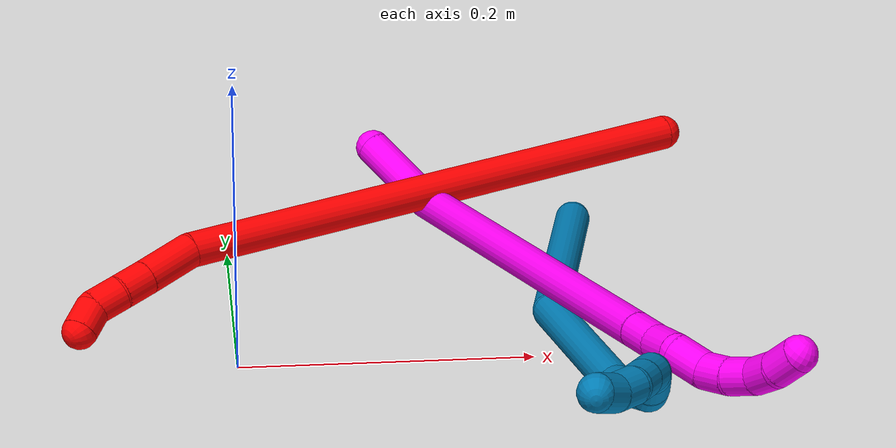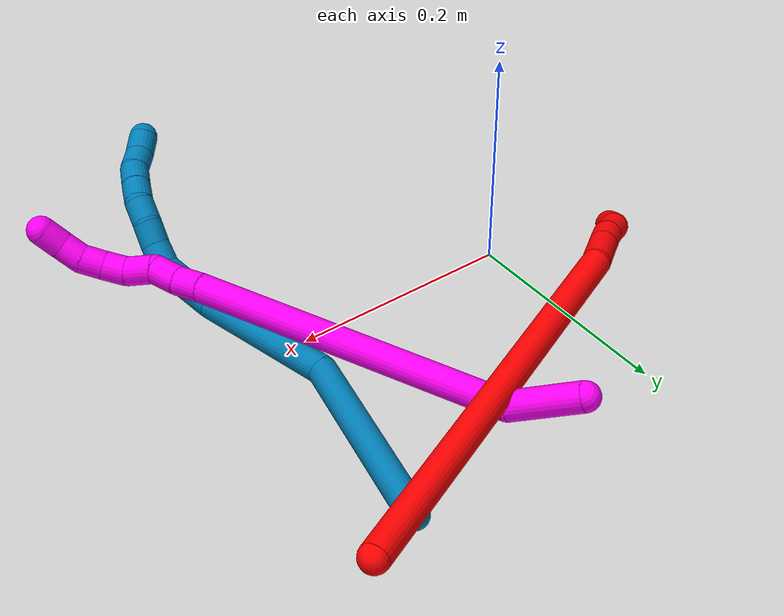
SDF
<sdf version="1.7">
 <world name="default">
  <model name="bin">
   <static>1</static>
   <link name="bottom">
    <collision name="collision-bottom">
     <pose>0 0 -0.01 0 -0 0</pose>
     <geometry><box><size>0.8 0.6 0.02</size></box></geometry>
     <surface>
      <friction><ode><mu>100</mu><mu2>100</mu2></ode></friction>
      <contact><collide_bitmask>65535</collide_bitmask></contact>
     </surface>
    </collision>
   </link>
   <link name="west_wall">
    <collision name="collision-west_wall">
     <pose>-0.41 0 0.1 0 -0 0</pose>
     <geometry><box><size>0.02 0.6 0.2</size></box></geometry>
     <surface>
      <friction><ode><mu>100</mu><mu2>100</mu2></ode></friction>
      <contact><collide_bitmask>65535</collide_bitmask></contact>
     </surface>
    </collision>
   </link>
   <link name="east_wall">
    <collision name="collision-east_wall">
     <pose>0.41 0 0.1 0 -0 0</pose>
     <geometry><box><size>0.02 0.6 0.2</size></box></geometry>
     <surface>
      <friction><ode><mu>100</mu><mu2>100</mu2></ode></friction>
      <contact><collide_bitmask>65535</collide_bitmask></contact>
     </surface>
    </collision>
   </link>
   <link name="south_wall">
    <collision name="collision-south_wall">
     <pose>0 -0.31 0.1 0 -0 0</pose>
     <geometry><box><size>0.8 0.02 0.2</size></box></geometry>
     <surface>
      <friction><ode><mu>100</mu><mu2>100</mu2></ode></friction>
      <contact><collide_bitmask>65535</collide_bitmask></contact>
     </surface>
    </collision>
   </link>
   <link name="north_wall">
    <collision name="collision-north_wall">
     <pose>0 0.31 0.1 0 -0 0</pose>
     <geometry><box><size>0.8 0.02 0.2</size></box></geometry>
     <surface>
      <friction><ode><mu>100</mu><mu2>100</mu2></ode></friction>
      <contact><collide_bitmask>65535</collide_bitmask></contact>
     </surface>
    </collision>
   </link>
  </model>
  <model name="2">
   <static>0</static>
   <link name="2">
    <collision name="collision-cylinder-e_1_1_4">
     <pose>-0.026021 -0.061058 -0.185401 2.82345 -0.132525 -0.784425</pose>
     <geometry><cylinder><radius>0.0125</radius><length>0.393847</length></cylinder></geometry>
     <surface>
      <friction><ode><mu>1.16</mu><mu2>1.16</mu2><slip1>0</slip1><slip2>0</slip2></ode></friction>
      <contact><ode><kp>1e+06</kp><kd>1</kd><max_vel>0</max_vel><min_depth>0.001</min_depth></ode></contact>
     </surface>
    </collision>
    <visual name="visual-cylinder-e_1_1_4">
     <pose>-0.026021 -0.061058 -0.185401 2.82345 -0.132525 -0.784425</pose>
     <geometry><cylinder><radius>0.0125</radius><length>0.393847</length></cylinder></geometry>
     <material><ambient>1 0 0 1</ambient></material>
    </visual>
    <collision name="collision-cylinder-e_2_4_5">
     <pose>-0.053055 -0.12286 -0.391155 3.10509 -0.049683 -1.87452</pose>
     <geometry><cylinder><radius>0.0125</radius><length>0.040781</length></cylinder></geometry>
     <surface>
      <friction><ode><mu>1.16</mu><mu2>1.16</mu2><slip1>0</slip1><slip2>0</slip2></ode></friction>
      <contact><ode><kp>1e+06</kp><kd>1</kd><max_vel>0</max_vel><min_depth>0.001</min_depth></ode></contact>
     </surface>
    </collision>
    <visual name="visual-cylinder-e_2_4_5">
     <pose>-0.053055 -0.12286 -0.391155 3.10509 -0.049683 -1.87452</pose>
     <geometry><cylinder><radius>0.0125</radius><length>0.040781</length></cylinder></geometry>
     <material><ambient>1 0 0 1</ambient></material>
    </visual>
    <collision name="collision-cylinder-e_3_5_6">
     <pose>-0.054685 -0.124229 -0.422753 3.08598 -0.0548 -1.55607</pose>
     <geometry><cylinder><radius>0.0125</radius><length>0.022562</length></cylinder></geometry>
     <surface>
      <friction><ode><mu>1.16</mu><mu2>1.16</mu2><slip1>0</slip1><slip2>0</slip2></ode></friction>
      <contact><ode><kp>1e+06</kp><kd>1</kd><max_vel>0</max_vel><min_depth>0.001</min_depth></ode></contact>
     </surface>
    </collision>
    <visual name="visual-cylinder-e_3_5_6">
     <pose>-0.054685 -0.124229 -0.422753 3.08598 -0.0548 -1.55607</pose>
     <geometry><cylinder><radius>0.0125</radius><length>0.022562</length></cylinder></geometry>
     <material><ambient>1 0 0 1</ambient></material>
    </visual>
    <collision name="collision-cylinder-e_4_6_7">
     <pose>-0.057496 -0.125456 -0.444895 3.0865 -0.198338 -2.60129</pose>
     <geometry><cylinder><radius>0.0125</radius><length>0.02226</length></cylinder></geometry>
     <surface>
      <friction><ode><mu>1.16</mu><mu2>1.16</mu2><slip1>0</slip1><slip2>0</slip2></ode></friction>
      <contact><ode><kp>1e+06</kp><kd>1</kd><max_vel>0</max_vel><min_depth>0.001</min_depth></ode></contact>
     </surface>
    </collision>
    <visual name="visual-cylinder-e_4_6_7">
     <pose>-0.057496 -0.125456 -0.444895 3.0865 -0.198338 -2.60129</pose>
     <geometry><cylinder><radius>0.0125</radius><length>0.02226</length></cylinder></geometry>
     <material><ambient>1 0 0 1</ambient></material>
    </visual>
    <collision name="collision-cylinder-e_5_7_2">
     <pose>-0.059292 -0.122029 -0.465234 -2.73844 0.038625 -0.188473</pose>
     <geometry><cylinder><radius>0.0125</radius><length>0.02055</length></cylinder></geometry>
     <surface>
      <friction><ode><mu>1.16</mu><mu2>1.16</mu2><slip1>0</slip1><slip2>0</slip2></ode></friction>
      <contact><ode><kp>1e+06</kp><kd>1</kd><max_vel>0</max_vel><min_depth>0.001</min_depth></ode></contact>
     </surface>
    </collision>
    <visual name="visual-cylinder-e_5_7_2">
     <pose>-0.059292 -0.122029 -0.465234 -2.73844 0.038625 -0.188473</pose>
     <geometry><cylinder><radius>0.0125</radius><length>0.02055</length></cylinder></geometry>
     <material><ambient>1 0 0 1</ambient></material>
    </visual>
    <collision name="collision-sphere-2">
     <pose>-0.058896 -0.118001 -0.474678 0 -0 0</pose>
     <geometry><sphere><radius>0.0125</radius></sphere></geometry>
     <surface>
      <friction><ode><mu>1.16</mu><mu2>1.16</mu2><slip1>0</slip1><slip2>0</slip2></ode></friction>
      <contact><ode><kp>1e+06</kp><kd>1</kd><max_vel>0</max_vel><min_depth>0.001</min_depth></ode></contact>
     </surface>
    </collision>
    <visual name="visual-sphere-2">
     <pose>-0.058896 -0.118001 -0.474678 0 -0 0</pose>
     <geometry><sphere><radius>0.0125</radius></sphere></geometry>
     <material><ambient>1 0 0 1</ambient></material>
    </visual>
    <collision name="collision-sphere-7">
     <pose>-0.059689 -0.126057 -0.45579 0 -0 0</pose>
     <geometry><sphere><radius>0.0125</radius></sphere></geometry>
     <surface>
      <friction><ode><mu>1.16</mu><mu2>1.16</mu2><slip1>0</slip1><slip2>0</slip2></ode></friction>
      <contact><ode><kp>1e+06</kp><kd>1</kd><max_vel>0</max_vel><min_depth>0.001</min_depth></ode></contact>
     </surface>
    </collision>
    <visual name="visual-sphere-7">
     <pose>-0.059689 -0.126057 -0.45579 0 -0 0</pose>
     <geometry><sphere><radius>0.0125</radius></sphere></geometry>
     <material><ambient>1 0 0 1</ambient></material>
    </visual>
    <collision name="collision-sphere-6">
     <pose>-0.055303 -0.124855 -0.434 0 -0 0</pose>
     <geometry><sphere><radius>0.0125</radius></sphere></geometry>
     <surface>
      <friction><ode><mu>1.16</mu><mu2>1.16</mu2><slip1>0</slip1><slip2>0</slip2></ode></friction>
      <contact><ode><kp>1e+06</kp><kd>1</kd><max_vel>0</max_vel><min_depth>0.001</min_depth></ode></contact>
     </surface>
    </collision>
    <visual name="visual-sphere-6">
     <pose>-0.055303 -0.124855 -0.434 0 -0 0</pose>
     <geometry><sphere><radius>0.0125</radius></sphere></geometry>
     <material><ambient>1 0 0 1</ambient></material>
    </visual>
    <collision name="collision-sphere-5">
     <pose>-0.054067 -0.123603 -0.411507 0 -0 0</pose>
     <geometry><sphere><radius>0.0125</radius></sphere></geometry>
     <surface>
      <friction><ode><mu>1.16</mu><mu2>1.16</mu2><slip1>0</slip1><slip2>0</slip2></ode></friction>
      <contact><ode><kp>1e+06</kp><kd>1</kd><max_vel>0</max_vel><min_depth>0.001</min_depth></ode></contact>
     </surface>
    </collision>
    <visual name="visual-sphere-5">
     <pose>-0.054067 -0.123603 -0.411507 0 -0 0</pose>
     <geometry><sphere><radius>0.0125</radius></sphere></geometry>
     <material><ambient>1 0 0 1</ambient></material>
    </visual>
    <collision name="collision-sphere-1">
     <geometry><sphere><radius>0.0125</radius></sphere></geometry>
     <surface>
      <friction><ode><mu>1.16</mu><mu2>1.16</mu2><slip1>0</slip1><slip2>0</slip2></ode></friction>
      <contact><ode><kp>1e+06</kp><kd>1</kd><max_vel>0</max_vel><min_depth>0.001</min_depth></ode></contact>
     </surface>
    </collision>
    <visual name="visual-sphere-1">
     <geometry><sphere><radius>0.0125</radius></sphere></geometry>
     <material><ambient>1 0 0 1</ambient></material>
    </visual>
    <collision name="collision-sphere-4">
     <pose>-0.052042 -0.122117 -0.370803 0 -0 0</pose>
     <geometry><sphere><radius>0.0125</radius></sphere></geometry>
     <surface>
      <friction><ode><mu>1.16</mu><mu2>1.16</mu2><slip1>0</slip1><slip2>0</slip2></ode></friction>
      <contact><ode><kp>1e+06</kp><kd>1</kd><max_vel>0</max_vel><min_depth>0.001</min_depth></ode></contact>
     </surface>
    </collision>
    <visual name="visual-sphere-4">
     <pose>-0.052042 -0.122117 -0.370803 0 -0 0</pose>
     <geometry><sphere><radius>0.0125</radius></sphere></geometry>
     <material><ambient>1 0 0 1</ambient></material>
    </visual>
    <inertial>
     <pose>-0.032288 -0.074322 -0.235947 0 -0 0</pose>
     <mass>0.5</mass>
     <inertia>
      <ixx>-1e-05</ixx>
      <ixy>0</ixy>
      <ixz>0</ixz>
      <iyy>-0.006876</iyy>
      <iyz>0</iyz>
      <izz>0.002222</izz>
     </inertia>
    </inertial>
   </link>
   <pose>0.32861 0.27027 0.058654 -1.29112 -0.557855 -1.00336</pose>
  </model>
  <model name="9">
   <static>0</static>
   <link name="9">
    <collision name="collision-cylinder-e_1_1_4">
     <pose>-0.004081 0.004849 -0.08735 -3.08614 -0.046617 1.39792</pose>
     <geometry><cylinder><radius>0.0125</radius><length>0.17516</length></cylinder></geometry>
     <surface>
      <friction><ode><mu>1.16</mu><mu2>1.16</mu2><slip1>0</slip1><slip2>0</slip2></ode></friction>
      <contact><ode><kp>1e+06</kp><kd>1</kd><max_vel>0</max_vel><min_depth>0.001</min_depth></ode></contact>
     </surface>
    </collision>
    <visual name="visual-cylinder-e_1_1_4">
     <pose>-0.004081 0.004849 -0.08735 -3.08614 -0.046617 1.39792</pose>
     <geometry><cylinder><radius>0.0125</radius><length>0.17516</length></cylinder></geometry>
     <material><ambient>0 0.490196 0.709804 1</ambient></material>
    </visual>
    <collision name="collision-cylinder-e_2_4_5">
     <pose>0.002013 -0.010487 -0.234535 2.81623 0.159762 0.907562</pose>
     <geometry><cylinder><radius>0.0125</radius><length>0.127924</length></cylinder></geometry>
     <surface>
      <friction><ode><mu>1.16</mu><mu2>1.16</mu2><slip1>0</slip1><slip2>0</slip2></ode></friction>
      <contact><ode><kp>1e+06</kp><kd>1</kd><max_vel>0</max_vel><min_depth>0.001</min_depth></ode></contact>
     </surface>
    </collision>
    <visual name="visual-cylinder-e_2_4_5">
     <pose>0.002013 -0.010487 -0.234535 2.81623 0.159762 0.907562</pose>
     <geometry><cylinder><radius>0.0125</radius><length>0.127924</length></cylinder></geometry>
     <material><ambient>0 0.490196 0.709804 1</ambient></material>
    </visual>
    <collision name="collision-cylinder-e_3_5_6">
     <pose>0.01042 -0.043487 -0.317514 2.63592 -0.066719 -0.256911</pose>
     <geometry><cylinder><radius>0.0125</radius><length>0.05303</length></cylinder></geometry>
     <surface>
      <friction><ode><mu>1.16</mu><mu2>1.16</mu2><slip1>0</slip1><slip2>0</slip2></ode></friction>
      <contact><ode><kp>1e+06</kp><kd>1</kd><max_vel>0</max_vel><min_depth>0.001</min_depth></ode></contact>
     </surface>
    </collision>
    <visual name="visual-cylinder-e_3_5_6">
     <pose>0.01042 -0.043487 -0.317514 2.63592 -0.066719 -0.256911</pose>
     <geometry><cylinder><radius>0.0125</radius><length>0.05303</length></cylinder></geometry>
     <material><ambient>0 0.490196 0.709804 1</ambient></material>
    </visual>
    <collision name="collision-cylinder-e_4_6_7">
     <pose>0.003336 -0.05981 -0.34949 2.76346 -0.510104 -1.87534</pose>
     <geometry><cylinder><radius>0.0125</radius><length>0.021777</length></cylinder></geometry>
     <surface>
      <friction><ode><mu>1.16</mu><mu2>1.16</mu2><slip1>0</slip1><slip2>0</slip2></ode></friction>
      <contact><ode><kp>1e+06</kp><kd>1</kd><max_vel>0</max_vel><min_depth>0.001</min_depth></ode></contact>
     </surface>
    </collision>
    <visual name="visual-cylinder-e_4_6_7">
     <pose>0.003336 -0.05981 -0.34949 2.76346 -0.510104 -1.87534</pose>
     <geometry><cylinder><radius>0.0125</radius><length>0.021777</length></cylinder></geometry>
     <material><ambient>0 0.490196 0.709804 1</ambient></material>
    </visual>
    <collision name="collision-cylinder-e_5_7_8">
     <pose>-0.00849 -0.067023 -0.365986 2.69138 -0.652804 -1.95209</pose>
     <geometry><cylinder><radius>0.0125</radius><length>0.021433</length></cylinder></geometry>
     <surface>
      <friction><ode><mu>1.16</mu><mu2>1.16</mu2><slip1>0</slip1><slip2>0</slip2></ode></friction>
      <contact><ode><kp>1e+06</kp><kd>1</kd><max_vel>0</max_vel><min_depth>0.001</min_depth></ode></contact>
     </surface>
    </collision>
    <visual name="visual-cylinder-e_5_7_8">
     <pose>-0.00849 -0.067023 -0.365986 2.69138 -0.652804 -1.95209</pose>
     <geometry><cylinder><radius>0.0125</radius><length>0.021433</length></cylinder></geometry>
     <material><ambient>0 0.490196 0.709804 1</ambient></material>
    </visual>
    <collision name="collision-cylinder-e_6_8_9">
     <pose>-0.019682 -0.072875 -0.382532 2.90433 -0.473576 -2.22404</pose>
     <geometry><cylinder><radius>0.0125</radius><length>0.020534</length></cylinder></geometry>
     <surface>
      <friction><ode><mu>1.16</mu><mu2>1.16</mu2><slip1>0</slip1><slip2>0</slip2></ode></friction>
      <contact><ode><kp>1e+06</kp><kd>1</kd><max_vel>0</max_vel><min_depth>0.001</min_depth></ode></contact>
     </surface>
    </collision>
    <visual name="visual-cylinder-e_6_8_9">
     <pose>-0.019682 -0.072875 -0.382532 2.90433 -0.473576 -2.22404</pose>
     <geometry><cylinder><radius>0.0125</radius><length>0.020534</length></cylinder></geometry>
     <material><ambient>0 0.490196 0.709804 1</ambient></material>
    </visual>
    <collision name="collision-cylinder-e_7_9_10">
     <pose>-0.027578 -0.073667 -0.400843 -2.99879 -0.325389 2.31975</pose>
     <geometry><cylinder><radius>0.0125</radius><length>0.020109</length></cylinder></geometry>
     <surface>
      <friction><ode><mu>1.16</mu><mu2>1.16</mu2><slip1>0</slip1><slip2>0</slip2></ode></friction>
      <contact><ode><kp>1e+06</kp><kd>1</kd><max_vel>0</max_vel><min_depth>0.001</min_depth></ode></contact>
     </surface>
    </collision>
    <visual name="visual-cylinder-e_7_9_10">
     <pose>-0.027578 -0.073667 -0.400843 -2.99879 -0.325389 2.31975</pose>
     <geometry><cylinder><radius>0.0125</radius><length>0.020109</length></cylinder></geometry>
     <material><ambient>0 0.490196 0.709804 1</ambient></material>
    </visual>
    <collision name="collision-cylinder-e_8_10_11">
     <pose>-0.033937 -0.070516 -0.419599 -2.95141 -0.319763 2.07337</pose>
     <geometry><cylinder><radius>0.0125</radius><length>0.02001</length></cylinder></geometry>
     <surface>
      <friction><ode><mu>1.16</mu><mu2>1.16</mu2><slip1>0</slip1><slip2>0</slip2></ode></friction>
      <contact><ode><kp>1e+06</kp><kd>1</kd><max_vel>0</max_vel><min_depth>0.001</min_depth></ode></contact>
     </surface>
    </collision>
    <visual name="visual-cylinder-e_8_10_11">
     <pose>-0.033937 -0.070516 -0.419599 -2.95141 -0.319763 2.07337</pose>
     <geometry><cylinder><radius>0.0125</radius><length>0.02001</length></cylinder></geometry>
     <material><ambient>0 0.490196 0.709804 1</ambient></material>
    </visual>
    <collision name="collision-cylinder-e_9_11_12">
     <pose>-0.04074 -0.064219 -0.437086 -2.63752 -0.374013 1.26739</pose>
     <geometry><cylinder><radius>0.0125</radius><length>0.020023</length></cylinder></geometry>
     <surface>
      <friction><ode><mu>1.16</mu><mu2>1.16</mu2><slip1>0</slip1><slip2>0</slip2></ode></friction>
      <contact><ode><kp>1e+06</kp><kd>1</kd><max_vel>0</max_vel><min_depth>0.001</min_depth></ode></contact>
     </surface>
    </collision>
    <visual name="visual-cylinder-e_9_11_12">
     <pose>-0.04074 -0.064219 -0.437086 -2.63752 -0.374013 1.26739</pose>
     <geometry><cylinder><radius>0.0125</radius><length>0.020023</length></cylinder></geometry>
     <material><ambient>0 0.490196 0.709804 1</ambient></material>
    </visual>
    <collision name="collision-cylinder-e_10_12_2">
     <pose>-0.050108 -0.0567 -0.452881 -2.76511 -0.607721 2.04976</pose>
     <geometry><cylinder><radius>0.0125</radius><length>0.02</length></cylinder></geometry>
     <surface>
      <friction><ode><mu>1.16</mu><mu2>1.16</mu2><slip1>0</slip1><slip2>0</slip2></ode></friction>
      <contact><ode><kp>1e+06</kp><kd>1</kd><max_vel>0</max_vel><min_depth>0.001</min_depth></ode></contact>
     </surface>
    </collision>
    <visual name="visual-cylinder-e_10_12_2">
     <pose>-0.050108 -0.0567 -0.452881 -2.76511 -0.607721 2.04976</pose>
     <geometry><cylinder><radius>0.0125</radius><length>0.02</length></cylinder></geometry>
     <material><ambient>0 0.490196 0.709804 1</ambient></material>
    </visual>
    <collision name="collision-sphere-2">
     <pose>-0.055818 -0.053681 -0.460516 0 -0 0</pose>
     <geometry><sphere><radius>0.0125</radius></sphere></geometry>
     <surface>
      <friction><ode><mu>1.16</mu><mu2>1.16</mu2><slip1>0</slip1><slip2>0</slip2></ode></friction>
      <contact><ode><kp>1e+06</kp><kd>1</kd><max_vel>0</max_vel><min_depth>0.001</min_depth></ode></contact>
     </surface>
    </collision>
    <visual name="visual-sphere-2">
     <pose>-0.055818 -0.053681 -0.460516 0 -0 0</pose>
     <geometry><sphere><radius>0.0125</radius></sphere></geometry>
     <material><ambient>0 0.490196 0.709804 1</ambient></material>
    </visual>
    <collision name="collision-sphere-12">
     <pose>-0.044398 -0.059718 -0.445246 0 -0 0</pose>
     <geometry><sphere><radius>0.0125</radius></sphere></geometry>
     <surface>
      <friction><ode><mu>1.16</mu><mu2>1.16</mu2><slip1>0</slip1><slip2>0</slip2></ode></friction>
      <contact><ode><kp>1e+06</kp><kd>1</kd><max_vel>0</max_vel><min_depth>0.001</min_depth></ode></contact>
     </surface>
    </collision>
    <visual name="visual-sphere-12">
     <pose>-0.044398 -0.059718 -0.445246 0 -0 0</pose>
     <geometry><sphere><radius>0.0125</radius></sphere></geometry>
     <material><ambient>0 0.490196 0.709804 1</ambient></material>
    </visual>
    <collision name="collision-sphere-11">
     <pose>-0.037082 -0.06872 -0.428926 0 -0 0</pose>
     <geometry><sphere><radius>0.0125</radius></sphere></geometry>
     <surface>
      <friction><ode><mu>1.16</mu><mu2>1.16</mu2><slip1>0</slip1><slip2>0</slip2></ode></friction>
      <contact><ode><kp>1e+06</kp><kd>1</kd><max_vel>0</max_vel><min_depth>0.001</min_depth></ode></contact>
     </surface>
    </collision>
    <visual name="visual-sphere-11">
     <pose>-0.037082 -0.06872 -0.428926 0 -0 0</pose>
     <geometry><sphere><radius>0.0125</radius></sphere></geometry>
     <material><ambient>0 0.490196 0.709804 1</ambient></material>
    </visual>
    <collision name="collision-sphere-10">
     <pose>-0.030792 -0.072311 -0.410273 0 -0 0</pose>
     <geometry><sphere><radius>0.0125</radius></sphere></geometry>
     <surface>
      <friction><ode><mu>1.16</mu><mu2>1.16</mu2><slip1>0</slip1><slip2>0</slip2></ode></friction>
      <contact><ode><kp>1e+06</kp><kd>1</kd><max_vel>0</max_vel><min_depth>0.001</min_depth></ode></contact>
     </surface>
    </collision>
    <visual name="visual-sphere-10">
     <pose>-0.030792 -0.072311 -0.410273 0 -0 0</pose>
     <geometry><sphere><radius>0.0125</radius></sphere></geometry>
     <material><ambient>0 0.490196 0.709804 1</ambient></material>
    </visual>
    <collision name="collision-sphere-9">
     <pose>-0.024364 -0.075023 -0.391413 0 -0 0</pose>
     <geometry><sphere><radius>0.0125</radius></sphere></geometry>
     <surface>
      <friction><ode><mu>1.16</mu><mu2>1.16</mu2><slip1>0</slip1><slip2>0</slip2></ode></friction>
      <contact><ode><kp>1e+06</kp><kd>1</kd><max_vel>0</max_vel><min_depth>0.001</min_depth></ode></contact>
     </surface>
    </collision>
    <visual name="visual-sphere-9">
     <pose>-0.024364 -0.075023 -0.391413 0 -0 0</pose>
     <geometry><sphere><radius>0.0125</radius></sphere></geometry>
     <material><ambient>0 0.490196 0.709804 1</ambient></material>
    </visual>
    <collision name="collision-sphere-4">
     <pose>-0.008162 0.009698 -0.1747 0 -0 0</pose>
     <geometry><sphere><radius>0.0125</radius></sphere></geometry>
     <surface>
      <friction><ode><mu>1.16</mu><mu2>1.16</mu2><slip1>0</slip1><slip2>0</slip2></ode></friction>
      <contact><ode><kp>1e+06</kp><kd>1</kd><max_vel>0</max_vel><min_depth>0.001</min_depth></ode></contact>
     </surface>
    </collision>
    <visual name="visual-sphere-4">
     <pose>-0.008162 0.009698 -0.1747 0 -0 0</pose>
     <geometry><sphere><radius>0.0125</radius></sphere></geometry>
     <material><ambient>0 0.490196 0.709804 1</ambient></material>
    </visual>
    <collision name="collision-sphere-1">
     <geometry><sphere><radius>0.0125</radius></sphere></geometry>
     <surface>
      <friction><ode><mu>1.16</mu><mu2>1.16</mu2><slip1>0</slip1><slip2>0</slip2></ode></friction>
      <contact><ode><kp>1e+06</kp><kd>1</kd><max_vel>0</max_vel><min_depth>0.001</min_depth></ode></contact>
     </surface>
    </collision>
    <visual name="visual-sphere-1">
     <geometry><sphere><radius>0.0125</radius></sphere></geometry>
     <material><ambient>0 0.490196 0.709804 1</ambient></material>
    </visual>
    <collision name="collision-sphere-8">
     <pose>-0.014999 -0.070728 -0.373651 0 -0 0</pose>
     <geometry><sphere><radius>0.0125</radius></sphere></geometry>
     <surface>
      <friction><ode><mu>1.16</mu><mu2>1.16</mu2><slip1>0</slip1><slip2>0</slip2></ode></friction>
      <contact><ode><kp>1e+06</kp><kd>1</kd><max_vel>0</max_vel><min_depth>0.001</min_depth></ode></contact>
     </surface>
    </collision>
    <visual name="visual-sphere-8">
     <pose>-0.014999 -0.070728 -0.373651 0 -0 0</pose>
     <geometry><sphere><radius>0.0125</radius></sphere></geometry>
     <material><ambient>0 0.490196 0.709804 1</ambient></material>
    </visual>
    <collision name="collision-sphere-5">
     <pose>0.012188 -0.030672 -0.294369 0 -0 0</pose>
     <geometry><sphere><radius>0.0125</radius></sphere></geometry>
     <surface>
      <friction><ode><mu>1.16</mu><mu2>1.16</mu2><slip1>0</slip1><slip2>0</slip2></ode></friction>
      <contact><ode><kp>1e+06</kp><kd>1</kd><max_vel>0</max_vel><min_depth>0.001</min_depth></ode></contact>
     </surface>
    </collision>
    <visual name="visual-sphere-5">
     <pose>0.012188 -0.030672 -0.294369 0 -0 0</pose>
     <geometry><sphere><radius>0.0125</radius></sphere></geometry>
     <material><ambient>0 0.490196 0.709804 1</ambient></material>
    </visual>
    <collision name="collision-sphere-6">
     <pose>0.008653 -0.056302 -0.340659 0 -0 0</pose>
     <geometry><sphere><radius>0.0125</radius></sphere></geometry>
     <surface>
      <friction><ode><mu>1.16</mu><mu2>1.16</mu2><slip1>0</slip1><slip2>0</slip2></ode></friction>
      <contact><ode><kp>1e+06</kp><kd>1</kd><max_vel>0</max_vel><min_depth>0.001</min_depth></ode></contact>
     </surface>
    </collision>
    <visual name="visual-sphere-6">
     <pose>0.008653 -0.056302 -0.340659 0 -0 0</pose>
     <geometry><sphere><radius>0.0125</radius></sphere></geometry>
     <material><ambient>0 0.490196 0.709804 1</ambient></material>
    </visual>
    <collision name="collision-sphere-7">
     <pose>-0.00198 -0.063319 -0.358321 0 -0 0</pose>
     <geometry><sphere><radius>0.0125</radius></sphere></geometry>
     <surface>
      <friction><ode><mu>1.16</mu><mu2>1.16</mu2><slip1>0</slip1><slip2>0</slip2></ode></friction>
      <contact><ode><kp>1e+06</kp><kd>1</kd><max_vel>0</max_vel><min_depth>0.001</min_depth></ode></contact>
     </surface>
    </collision>
    <visual name="visual-sphere-7">
     <pose>-0.00198 -0.063319 -0.358321 0 -0 0</pose>
     <geometry><sphere><radius>0.0125</radius></sphere></geometry>
     <material><ambient>0 0.490196 0.709804 1</ambient></material>
    </visual>
    <inertial>
     <pose>-0.00694 -0.024692 -0.239434 0 -0 0</pose>
     <mass>0.5</mass>
     <inertia><ixx>0.000778</ixx><ixy>0</ixy><ixz>0</ixz><iyy>0.000399</iyy><iyz>0</iyz><izz>1e-06</izz></inertia>
    </inertial>
   </link>
   <pose>0.25498 0.220066 0.012061 -1.54561 1.07058 -0.123409</pose>
  </model>
  <model name="10">
   <static>0</static>
   <link name="10">
    <collision name="collision-cylinder-e_1_1_4">
     <pose>-0.014115 -0.02858 -0.00063 1.59284 -0.458649 -0.468505</pose>
     <geometry><cylinder><radius>0.0125</radius><length>0.063764</length></cylinder></geometry>
     <surface>
      <friction><ode><mu>1.16</mu><mu2>1.16</mu2><slip1>0</slip1><slip2>0</slip2></ode></friction>
      <contact><ode><kp>1e+06</kp><kd>1</kd><max_vel>0</max_vel><min_depth>0.001</min_depth></ode></contact>
     </surface>
    </collision>
    <visual name="visual-cylinder-e_1_1_4">
     <pose>-0.014115 -0.02858 -0.00063 1.59284 -0.458649 -0.468505</pose>
     <geometry><cylinder><radius>0.0125</radius><length>0.063764</length></cylinder></geometry>
     <material><ambient>1 0 0.964706 1</ambient></material>
    </visual>
    <collision name="collision-cylinder-e_2_4_5">
     <pose>-0.039415 -0.190396 -0.04619 1.89604 -0.079378 -0.110484</pose>
     <geometry><cylinder><radius>0.0125</radius><length>0.282105</length></cylinder></geometry>
     <surface>
      <friction><ode><mu>1.16</mu><mu2>1.16</mu2><slip1>0</slip1><slip2>0</slip2></ode></friction>
      <contact><ode><kp>1e+06</kp><kd>1</kd><max_vel>0</max_vel><min_depth>0.001</min_depth></ode></contact>
     </surface>
    </collision>
    <visual name="visual-cylinder-e_2_4_5">
     <pose>-0.039415 -0.190396 -0.04619 1.89604 -0.079378 -0.110484</pose>
     <geometry><cylinder><radius>0.0125</radius><length>0.282105</length></cylinder></geometry>
     <material><ambient>1 0 0.964706 1</ambient></material>
    </visual>
    <collision name="collision-cylinder-e_3_5_6">
     <pose>-0.052173 -0.334454 -0.094588 1.88084 -0.137574 -0.188277</pose>
     <geometry><cylinder><radius>0.0125</radius><length>0.022944</length></cylinder></geometry>
     <surface>
      <friction><ode><mu>1.16</mu><mu2>1.16</mu2><slip1>0</slip1><slip2>0</slip2></ode></friction>
      <contact><ode><kp>1e+06</kp><kd>1</kd><max_vel>0</max_vel><min_depth>0.001</min_depth></ode></contact>
     </surface>
    </collision>
    <visual name="visual-cylinder-e_3_5_6">
     <pose>-0.052173 -0.334454 -0.094588 1.88084 -0.137574 -0.188277</pose>
     <geometry><cylinder><radius>0.0125</radius><length>0.022944</length></cylinder></geometry>
     <material><ambient>1 0 0.964706 1</ambient></material>
    </visual>
    <collision name="collision-cylinder-e_4_6_7">
     <pose>-0.053826 -0.35623 -0.102622 1.96581 -0.006736 -0.010106</pose>
     <geometry><cylinder><radius>0.0125</radius><length>0.023737</length></cylinder></geometry>
     <surface>
      <friction><ode><mu>1.16</mu><mu2>1.16</mu2><slip1>0</slip1><slip2>0</slip2></ode></friction>
      <contact><ode><kp>1e+06</kp><kd>1</kd><max_vel>0</max_vel><min_depth>0.001</min_depth></ode></contact>
     </surface>
    </collision>
    <visual name="visual-cylinder-e_4_6_7">
     <pose>-0.053826 -0.35623 -0.102622 1.96581 -0.006736 -0.010106</pose>
     <geometry><cylinder><radius>0.0125</radius><length>0.023737</length></cylinder></geometry>
     <material><ambient>1 0 0.964706 1</ambient></material>
    </visual>
    <collision name="collision-cylinder-e_5_7_8">
     <pose>-0.059859 -0.378077 -0.109799 1.80593 -0.488502 -0.612115</pose>
     <geometry><cylinder><radius>0.0125</radius><length>0.02537</length></cylinder></geometry>
     <surface>
      <friction><ode><mu>1.16</mu><mu2>1.16</mu2><slip1>0</slip1><slip2>0</slip2></ode></friction>
      <contact><ode><kp>1e+06</kp><kd>1</kd><max_vel>0</max_vel><min_depth>0.001</min_depth></ode></contact>
     </surface>
    </collision>
    <visual name="visual-cylinder-e_5_7_8">
     <pose>-0.059859 -0.378077 -0.109799 1.80593 -0.488502 -0.612115</pose>
     <geometry><cylinder><radius>0.0125</radius><length>0.02537</length></cylinder></geometry>
     <material><ambient>1 0 0.964706 1</ambient></material>
    </visual>
    <collision name="collision-cylinder-e_6_8_9">
     <pose>-0.068458 -0.397461 -0.117621 2.12139 -0.259577 -0.458378</pose>
     <geometry><cylinder><radius>0.0125</radius><length>0.020616</length></cylinder></geometry>
     <surface>
      <friction><ode><mu>1.16</mu><mu2>1.16</mu2><slip1>0</slip1><slip2>0</slip2></ode></friction>
      <contact><ode><kp>1e+06</kp><kd>1</kd><max_vel>0</max_vel><min_depth>0.001</min_depth></ode></contact>
     </surface>
    </collision>
    <visual name="visual-cylinder-e_6_8_9">
     <pose>-0.068458 -0.397461 -0.117621 2.12139 -0.259577 -0.458378</pose>
     <geometry><cylinder><radius>0.0125</radius><length>0.020616</length></cylinder></geometry>
     <material><ambient>1 0 0.964706 1</ambient></material>
    </visual>
    <collision name="collision-cylinder-e_7_9_10">
     <pose>-0.073928 -0.41296 -0.129566 2.33611 -0.282778 -0.644892</pose>
     <geometry><cylinder><radius>0.0125</radius><length>0.020241</length></cylinder></geometry>
     <surface>
      <friction><ode><mu>1.16</mu><mu2>1.16</mu2><slip1>0</slip1><slip2>0</slip2></ode></friction>
      <contact><ode><kp>1e+06</kp><kd>1</kd><max_vel>0</max_vel><min_depth>0.001</min_depth></ode></contact>
     </surface>
    </collision>
    <visual name="visual-cylinder-e_7_9_10">
     <pose>-0.073928 -0.41296 -0.129566 2.33611 -0.282778 -0.644892</pose>
     <geometry><cylinder><radius>0.0125</radius><length>0.020241</length></cylinder></geometry>
     <material><ambient>1 0 0.964706 1</ambient></material>
    </visual>
    <collision name="collision-cylinder-e_8_10_11">
     <pose>-0.076524 -0.426415 -0.144039 2.44716 0.022608 0.062458</pose>
     <geometry><cylinder><radius>0.0125</radius><length>0.020152</length></cylinder></geometry>
     <surface>
      <friction><ode><mu>1.16</mu><mu2>1.16</mu2><slip1>0</slip1><slip2>0</slip2></ode></friction>
      <contact><ode><kp>1e+06</kp><kd>1</kd><max_vel>0</max_vel><min_depth>0.001</min_depth></ode></contact>
     </surface>
    </collision>
    <visual name="visual-cylinder-e_8_10_11">
     <pose>-0.076524 -0.426415 -0.144039 2.44716 0.022608 0.062458</pose>
     <geometry><cylinder><radius>0.0125</radius><length>0.020152</length></cylinder></geometry>
     <material><ambient>1 0 0.964706 1</ambient></material>
    </visual>
    <collision name="collision-cylinder-e_9_11_2">
     <pose>-0.076473 -0.437233 -0.161364 2.71365 -0.016813 -0.077336</pose>
     <geometry><cylinder><radius>0.0125</radius><length>0.021072</length></cylinder></geometry>
     <surface>
      <friction><ode><mu>1.16</mu><mu2>1.16</mu2><slip1>0</slip1><slip2>0</slip2></ode></friction>
      <contact><ode><kp>1e+06</kp><kd>1</kd><max_vel>0</max_vel><min_depth>0.001</min_depth></ode></contact>
     </surface>
    </collision>
    <visual name="visual-cylinder-e_9_11_2">
     <pose>-0.076473 -0.437233 -0.161364 2.71365 -0.016813 -0.077336</pose>
     <geometry><cylinder><radius>0.0125</radius><length>0.021072</length></cylinder></geometry>
     <material><ambient>1 0 0.964706 1</ambient></material>
    </visual>
    <collision name="collision-sphere-2">
     <pose>-0.076651 -0.441605 -0.170949 0 -0 0</pose>
     <geometry><sphere><radius>0.0125</radius></sphere></geometry>
     <surface>
      <friction><ode><mu>1.16</mu><mu2>1.16</mu2><slip1>0</slip1><slip2>0</slip2></ode></friction>
      <contact><ode><kp>1e+06</kp><kd>1</kd><max_vel>0</max_vel><min_depth>0.001</min_depth></ode></contact>
     </surface>
    </collision>
    <visual name="visual-sphere-2">
     <pose>-0.076651 -0.441605 -0.170949 0 -0 0</pose>
     <geometry><sphere><radius>0.0125</radius></sphere></geometry>
     <material><ambient>1 0 0.964706 1</ambient></material>
    </visual>
    <collision name="collision-sphere-11">
     <pose>-0.076296 -0.432861 -0.15178 0 -0 0</pose>
     <geometry><sphere><radius>0.0125</radius></sphere></geometry>
     <surface>
      <friction><ode><mu>1.16</mu><mu2>1.16</mu2><slip1>0</slip1><slip2>0</slip2></ode></friction>
      <contact><ode><kp>1e+06</kp><kd>1</kd><max_vel>0</max_vel><min_depth>0.001</min_depth></ode></contact>
     </surface>
    </collision>
    <visual name="visual-sphere-11">
     <pose>-0.076296 -0.432861 -0.15178 0 -0 0</pose>
     <geometry><sphere><radius>0.0125</radius></sphere></geometry>
     <material><ambient>1 0 0.964706 1</ambient></material>
    </visual>
    <collision name="collision-sphere-10">
     <pose>-0.076752 -0.419968 -0.136298 0 -0 0</pose>
     <geometry><sphere><radius>0.0125</radius></sphere></geometry>
     <surface>
      <friction><ode><mu>1.16</mu><mu2>1.16</mu2><slip1>0</slip1><slip2>0</slip2></ode></friction>
      <contact><ode><kp>1e+06</kp><kd>1</kd><max_vel>0</max_vel><min_depth>0.001</min_depth></ode></contact>
     </surface>
    </collision>
    <visual name="visual-sphere-10">
     <pose>-0.076752 -0.419968 -0.136298 0 -0 0</pose>
     <geometry><sphere><radius>0.0125</radius></sphere></geometry>
     <material><ambient>1 0 0.964706 1</ambient></material>
    </visual>
    <collision name="collision-sphere-9">
     <pose>-0.071104 -0.405951 -0.122833 0 -0 0</pose>
     <geometry><sphere><radius>0.0125</radius></sphere></geometry>
     <surface>
      <friction><ode><mu>1.16</mu><mu2>1.16</mu2><slip1>0</slip1><slip2>0</slip2></ode></friction>
      <contact><ode><kp>1e+06</kp><kd>1</kd><max_vel>0</max_vel><min_depth>0.001</min_depth></ode></contact>
     </surface>
    </collision>
    <visual name="visual-sphere-9">
     <pose>-0.071104 -0.405951 -0.122833 0 -0 0</pose>
     <geometry><sphere><radius>0.0125</radius></sphere></geometry>
     <material><ambient>1 0 0.964706 1</ambient></material>
    </visual>
    <collision name="collision-sphere-4">
     <pose>-0.028231 -0.05716 -0.00126 0 -0 0</pose>
     <geometry><sphere><radius>0.0125</radius></sphere></geometry>
     <surface>
      <friction><ode><mu>1.16</mu><mu2>1.16</mu2><slip1>0</slip1><slip2>0</slip2></ode></friction>
      <contact><ode><kp>1e+06</kp><kd>1</kd><max_vel>0</max_vel><min_depth>0.001</min_depth></ode></contact>
     </surface>
    </collision>
    <visual name="visual-sphere-4">
     <pose>-0.028231 -0.05716 -0.00126 0 -0 0</pose>
     <geometry><sphere><radius>0.0125</radius></sphere></geometry>
     <material><ambient>1 0 0.964706 1</ambient></material>
    </visual>
    <collision name="collision-sphere-1">
     <geometry><sphere><radius>0.0125</radius></sphere></geometry>
     <surface>
      <friction><ode><mu>1.16</mu><mu2>1.16</mu2><slip1>0</slip1><slip2>0</slip2></ode></friction>
      <contact><ode><kp>1e+06</kp><kd>1</kd><max_vel>0</max_vel><min_depth>0.001</min_depth></ode></contact>
     </surface>
    </collision>
    <visual name="visual-sphere-1">
     <geometry><sphere><radius>0.0125</radius></sphere></geometry>
     <material><ambient>1 0 0.964706 1</ambient></material>
    </visual>
    <collision name="collision-sphere-8">
     <pose>-0.065813 -0.38897 -0.112408 0 -0 0</pose>
     <geometry><sphere><radius>0.0125</radius></sphere></geometry>
     <surface>
      <friction><ode><mu>1.16</mu><mu2>1.16</mu2><slip1>0</slip1><slip2>0</slip2></ode></friction>
      <contact><ode><kp>1e+06</kp><kd>1</kd><max_vel>0</max_vel><min_depth>0.001</min_depth></ode></contact>
     </surface>
    </collision>
    <visual name="visual-sphere-8">
     <pose>-0.065813 -0.38897 -0.112408 0 -0 0</pose>
     <geometry><sphere><radius>0.0125</radius></sphere></geometry>
     <material><ambient>1 0 0.964706 1</ambient></material>
    </visual>
    <collision name="collision-sphere-5">
     <pose>-0.0506 -0.323632 -0.091121 0 -0 0</pose>
     <geometry><sphere><radius>0.0125</radius></sphere></geometry>
     <surface>
      <friction><ode><mu>1.16</mu><mu2>1.16</mu2><slip1>0</slip1><slip2>0</slip2></ode></friction>
      <contact><ode><kp>1e+06</kp><kd>1</kd><max_vel>0</max_vel><min_depth>0.001</min_depth></ode></contact>
     </surface>
    </collision>
    <visual name="visual-sphere-5">
     <pose>-0.0506 -0.323632 -0.091121 0 -0 0</pose>
     <geometry><sphere><radius>0.0125</radius></sphere></geometry>
     <material><ambient>1 0 0.964706 1</ambient></material>
    </visual>
    <collision name="collision-sphere-6">
     <pose>-0.053747 -0.345276 -0.098055 0 -0 0</pose>
     <geometry><sphere><radius>0.0125</radius></sphere></geometry>
     <surface>
      <friction><ode><mu>1.16</mu><mu2>1.16</mu2><slip1>0</slip1><slip2>0</slip2></ode></friction>
      <contact><ode><kp>1e+06</kp><kd>1</kd><max_vel>0</max_vel><min_depth>0.001</min_depth></ode></contact>
     </surface>
    </collision>
    <visual name="visual-sphere-6">
     <pose>-0.053747 -0.345276 -0.098055 0 -0 0</pose>
     <geometry><sphere><radius>0.0125</radius></sphere></geometry>
     <material><ambient>1 0 0.964706 1</ambient></material>
    </visual>
    <collision name="collision-sphere-7">
     <pose>-0.053906 -0.367184 -0.107189 0 -0 0</pose>
     <geometry><sphere><radius>0.0125</radius></sphere></geometry>
     <surface>
      <friction><ode><mu>1.16</mu><mu2>1.16</mu2><slip1>0</slip1><slip2>0</slip2></ode></friction>
      <contact><ode><kp>1e+06</kp><kd>1</kd><max_vel>0</max_vel><min_depth>0.001</min_depth></ode></contact>
     </surface>
    </collision>
    <visual name="visual-sphere-7">
     <pose>-0.053906 -0.367184 -0.107189 0 -0 0</pose>
     <geometry><sphere><radius>0.0125</radius></sphere></geometry>
     <material><ambient>1 0 0.964706 1</ambient></material>
    </visual>
    <inertial>
     <pose>-0.044148 -0.231229 -0.063626 0 -0 0</pose>
     <mass>0.5</mass>
     <inertia>
      <ixx>0.001669</ixx>
      <ixy>0</ixy>
      <ixz>0</ixz>
      <iyy>-0.000837</iyy>
      <iyz>0</iyz>
      <izz>0.001958</izz>
     </inertia>
    </inertial>
   </link>
   <pose>0.1098 0.240743 0.065172 2.87869 -0.485534 -2.82298</pose>
  </model>
 </world>
</sdf>
